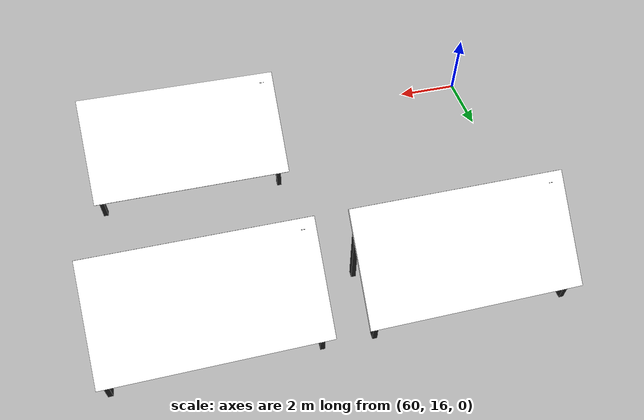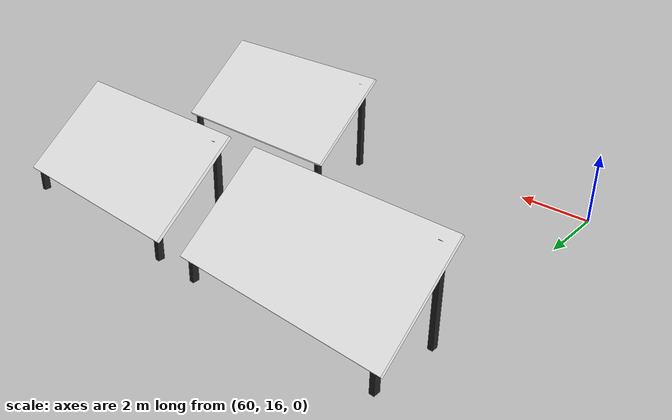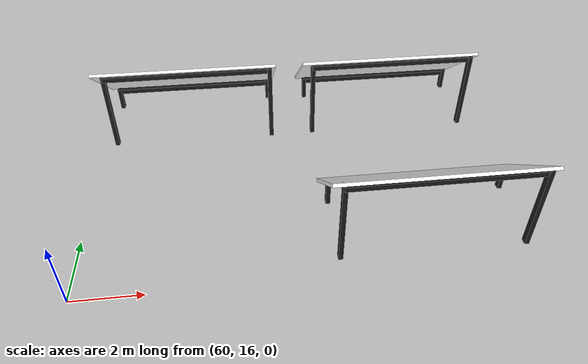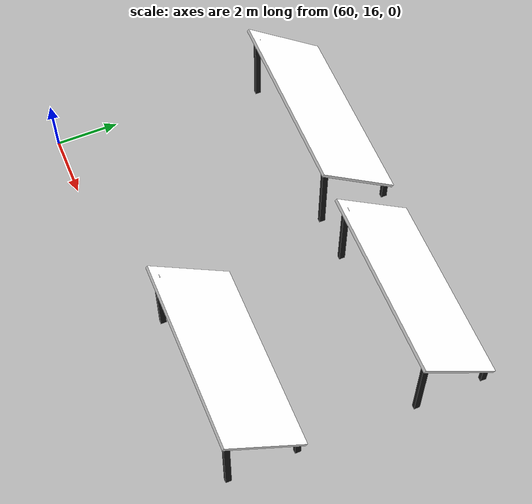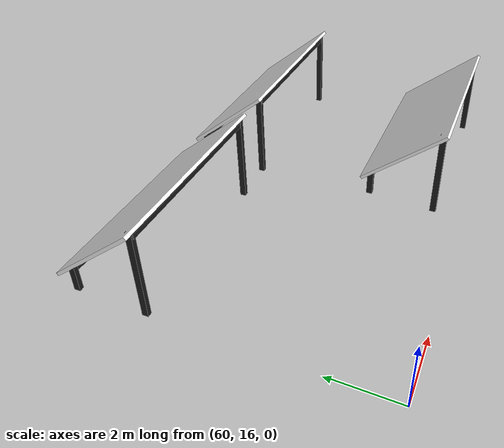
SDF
<sdf version="1.6">
 <world name="default">
  <model name="panel_8_3">
   <static>1</static>
   <link name="link_1">
    <inertial>
     <mass>1.98638</mass>
     <inertia><ixx>1.74251</ixx><ixy>0</ixy><ixz>0</ixz><iyy>6.11467</iyy><iyz>0</iyz><izz>7.85383</izz></inertia>
    </inertial>
    <pose>-0.040001 0.043327 0.560753 -0.688467 0 0</pose>
    <visual name="visual">
     <geometry><box><size>6.07696 3.24293 0.100789</size></box></geometry>
     <material>
      <lighting>1</lighting>
      <script>
       <uri>model://new_solar/materials/scripts</uri>
       <uri>model://new_solar/materials/textures</uri>
       <name>solar</name>
      </script>
      <shader type="pixel"><normal_map>__default__</normal_map></shader>
      <ambient>1 1 1 1</ambient>
      <diffuse>1 1 1 1</diffuse>
      <specular>0 0 0 1</specular>
      <emissive>0 0 0 1</emissive>
     </material>
    </visual>
    <collision name="collision">
     <geometry><box><size>6.07696 3.24293 0.100789</size></box></geometry>
     <surface>
      <friction>
       <ode><mu>1</mu><mu2>1</mu2><fdir1>0 0 0</fdir1><slip1>0</slip1><slip2>0</slip2></ode>
       <torsional>
        <coefficient>1</coefficient>
        <patch_radius>0</patch_radius>
        <surface_radius>0</surface_radius>
        <use_patch_radius>1</use_patch_radius>
        <ode><slip>0</slip></ode>
       </torsional>
      </friction>
      <bounce><restitution_coefficient>0</restitution_coefficient><threshold>1e+06</threshold></bounce>
      <contact>
       <collide_without_contact>0</collide_without_contact>
       <collide_without_contact_bitmask>1</collide_without_contact_bitmask>
       <collide_bitmask>1</collide_bitmask>
       <ode>
        <soft_cfm>0</soft_cfm>
        <soft_erp>0.2</soft_erp>
        <kp>1e+13</kp>
        <kd>1</kd>
        <max_vel>0.01</max_vel>
        <min_depth>0</min_depth>
       </ode>
       <bullet>
        <split_impulse>1</split_impulse>
        <split_impulse_penetration_threshold>-0.01</split_impulse_penetration_threshold>
        <soft_cfm>0</soft_cfm>
        <soft_erp>0.2</soft_erp>
        <kp>1e+13</kp>
        <kd>1</kd>
       </bullet>
      </contact>
     </surface>
    </collision>
   </link>
   <link name="link_2">
    <inertial>
     <mass>0.0207671</mass>
     <inertia>
      <ixx>0.0012143</ixx>
      <ixy>0</ixy>
      <ixz>0</ixz>
      <iyy>0.00118465</iyy>
      <iyz>0</iyz>
      <izz>9.301e-05</izz>
     </inertia>
    </inertial>
    <pose>2.8032 1.09463 -0.744944 0 -0 0</pose>
    <visual name="visual">
     <geometry><box><size>0.135288 0.188253 0.81623</size></box></geometry>
     <material>
      <lighting>1</lighting>
      <script><uri>file://media/materials/scripts/gazebo.material</uri><name>Gazebo/Black</name></script>
      <shader type="pixel"><normal_map>__default__</normal_map></shader>
      <ambient>0 0 0 1</ambient>
      <diffuse>0 0 0 1</diffuse>
      <specular>0.1 0.1 0.1 1</specular>
      <emissive>0 0 0 1</emissive>
     </material>
    </visual>
    <collision name="collision">
     <geometry><box><size>0.135288 0.188253 0.81623</size></box></geometry>
     <surface>
      <friction>
       <ode><mu>1</mu><mu2>1</mu2><fdir1>0 0 0</fdir1><slip1>0</slip1><slip2>0</slip2></ode>
       <torsional>
        <coefficient>1</coefficient>
        <patch_radius>0</patch_radius>
        <surface_radius>0</surface_radius>
        <use_patch_radius>1</use_patch_radius>
        <ode><slip>0</slip></ode>
       </torsional>
      </friction>
      <bounce><restitution_coefficient>0</restitution_coefficient><threshold>1e+06</threshold></bounce>
      <contact>
       <collide_without_contact>0</collide_without_contact>
       <collide_without_contact_bitmask>1</collide_without_contact_bitmask>
       <collide_bitmask>1</collide_bitmask>
       <ode>
        <soft_cfm>0</soft_cfm>
        <soft_erp>0.2</soft_erp>
        <kp>1e+13</kp>
        <kd>1</kd>
        <max_vel>0.01</max_vel>
        <min_depth>0</min_depth>
       </ode>
       <bullet>
        <split_impulse>1</split_impulse>
        <split_impulse_penetration_threshold>-0.01</split_impulse_penetration_threshold>
        <soft_cfm>0</soft_cfm>
        <soft_erp>0.2</soft_erp>
        <kp>1e+13</kp>
        <kd>1</kd>
       </bullet>
      </contact>
     </surface>
    </collision>
   </link>
   <link name="link_2_clone">
    <inertial>
     <mass>0.0207671</mass>
     <inertia>
      <ixx>0.0012143</ixx>
      <ixy>0</ixy>
      <ixz>0</ixz>
      <iyy>0.00118465</iyy>
      <iyz>0</iyz>
      <izz>9.301e-05</izz>
     </inertia>
    </inertial>
    <pose>-2.7581 1.05673 -0.787934 0 -0 0</pose>
    <visual name="visual">
     <geometry><box><size>0.135288 0.188253 0.81623</size></box></geometry>
     <material>
      <lighting>1</lighting>
      <script><uri>file://media/materials/scripts/gazebo.material</uri><name>Gazebo/Black</name></script>
      <shader type="pixel"><normal_map>__default__</normal_map></shader>
      <ambient>0 0 0 1</ambient>
      <diffuse>0 0 0 1</diffuse>
      <specular>0.1 0.1 0.1 1</specular>
      <emissive>0 0 0 1</emissive>
     </material>
    </visual>
    <collision name="collision">
     <geometry><box><size>0.135288 0.188253 0.81623</size></box></geometry>
     <surface>
      <friction>
       <ode><mu>1</mu><mu2>1</mu2><fdir1>0 0 0</fdir1><slip1>0</slip1><slip2>0</slip2></ode>
       <torsional>
        <coefficient>1</coefficient>
        <patch_radius>0</patch_radius>
        <surface_radius>0</surface_radius>
        <use_patch_radius>1</use_patch_radius>
        <ode><slip>0</slip></ode>
       </torsional>
      </friction>
      <bounce><restitution_coefficient>0</restitution_coefficient><threshold>1e+06</threshold></bounce>
      <contact>
       <collide_without_contact>0</collide_without_contact>
       <collide_without_contact_bitmask>1</collide_without_contact_bitmask>
       <collide_bitmask>1</collide_bitmask>
       <ode>
        <soft_cfm>0</soft_cfm>
        <soft_erp>0.2</soft_erp>
        <kp>1e+13</kp>
        <kd>1</kd>
        <max_vel>0.01</max_vel>
        <min_depth>0</min_depth>
       </ode>
       <bullet>
        <split_impulse>1</split_impulse>
        <split_impulse_penetration_threshold>-0.01</split_impulse_penetration_threshold>
        <soft_cfm>0</soft_cfm>
        <soft_erp>0.2</soft_erp>
        <kp>1e+13</kp>
        <kd>1</kd>
       </bullet>
      </contact>
     </surface>
    </collision>
   </link>
   <link name="link_2_clone_clone_clone">
    <inertial>
     <mass>0.0712376</mass>
     <inertia>
      <ixx>0.0467501</ixx>
      <ixy>0</ixy>
      <ixz>0</ixz>
      <iyy>0.0466484</iyy>
      <iyz>0</iyz>
      <izz>0.00031904</izz>
     </inertia>
    </inertial>
    <pose>2.7925 -1.06517 0.041693 0 -0 0</pose>
    <visual name="visual">
     <geometry><box><size>0.135288 0.188253 2.79994</size></box></geometry>
     <material>
      <lighting>1</lighting>
      <script><uri>file://media/materials/scripts/gazebo.material</uri><name>Gazebo/Black</name></script>
      <shader type="pixel"><normal_map>__default__</normal_map></shader>
      <ambient>0 0 0 1</ambient>
      <diffuse>0 0 0 1</diffuse>
      <specular>0.1 0.1 0.1 1</specular>
      <emissive>0 0 0 1</emissive>
     </material>
    </visual>
    <collision name="collision">
     <geometry><box><size>0.135288 0.188253 2.79994</size></box></geometry>
     <surface>
      <friction>
       <ode><mu>1</mu><mu2>1</mu2><fdir1>0 0 0</fdir1><slip1>0</slip1><slip2>0</slip2></ode>
       <torsional>
        <coefficient>1</coefficient>
        <patch_radius>0</patch_radius>
        <surface_radius>0</surface_radius>
        <use_patch_radius>1</use_patch_radius>
        <ode><slip>0</slip></ode>
       </torsional>
      </friction>
      <bounce><restitution_coefficient>0</restitution_coefficient><threshold>1e+06</threshold></bounce>
      <contact>
       <collide_without_contact>0</collide_without_contact>
       <collide_without_contact_bitmask>1</collide_without_contact_bitmask>
       <collide_bitmask>1</collide_bitmask>
       <ode>
        <soft_cfm>0</soft_cfm>
        <soft_erp>0.2</soft_erp>
        <kp>1e+13</kp>
        <kd>1</kd>
        <max_vel>0.01</max_vel>
        <min_depth>0</min_depth>
       </ode>
       <bullet>
        <split_impulse>1</split_impulse>
        <split_impulse_penetration_threshold>-0.01</split_impulse_penetration_threshold>
        <soft_cfm>0</soft_cfm>
        <soft_erp>0.2</soft_erp>
        <kp>1e+13</kp>
        <kd>1</kd>
       </bullet>
      </contact>
     </surface>
    </collision>
   </link>
   <link name="link_2_clone_clone_clone_clone">
    <inertial>
     <mass>0.0712376</mass>
     <inertia>
      <ixx>0.0467501</ixx>
      <ixy>0</ixy>
      <ixz>0</ixz>
      <iyy>0.0466484</iyy>
      <iyz>0</iyz>
      <izz>0.00031904</izz>
     </inertia>
    </inertial>
    <pose>-2.71279 -1.03577 0.041693 0 -0 0</pose>
    <visual name="visual">
     <geometry><box><size>0.135288 0.188253 2.79994</size></box></geometry>
     <material>
      <lighting>1</lighting>
      <script><uri>file://media/materials/scripts/gazebo.material</uri><name>Gazebo/Black</name></script>
      <shader type="pixel"><normal_map>__default__</normal_map></shader>
      <ambient>0 0 0 1</ambient>
      <diffuse>0 0 0 1</diffuse>
      <specular>0.1 0.1 0.1 1</specular>
      <emissive>0 0 0 1</emissive>
     </material>
    </visual>
    <collision name="collision">
     <geometry><box><size>0.135288 0.188253 2.79994</size></box></geometry>
     <surface>
      <friction>
       <ode><mu>1</mu><mu2>1</mu2><fdir1>0 0 0</fdir1><slip1>0</slip1><slip2>0</slip2></ode>
       <torsional>
        <coefficient>1</coefficient>
        <patch_radius>0</patch_radius>
        <surface_radius>0</surface_radius>
        <use_patch_radius>1</use_patch_radius>
        <ode><slip>0</slip></ode>
       </torsional>
      </friction>
      <bounce><restitution_coefficient>0</restitution_coefficient><threshold>1e+06</threshold></bounce>
      <contact>
       <collide_without_contact>0</collide_without_contact>
       <collide_without_contact_bitmask>1</collide_without_contact_bitmask>
       <collide_bitmask>1</collide_bitmask>
       <ode>
        <soft_cfm>0</soft_cfm>
        <soft_erp>0.2</soft_erp>
        <kp>1e+13</kp>
        <kd>1</kd>
        <max_vel>0.01</max_vel>
        <min_depth>0</min_depth>
       </ode>
       <bullet>
        <split_impulse>1</split_impulse>
        <split_impulse_penetration_threshold>-0.01</split_impulse_penetration_threshold>
        <soft_cfm>0</soft_cfm>
        <soft_erp>0.2</soft_erp>
        <kp>1e+13</kp>
        <kd>1</kd>
       </bullet>
      </contact>
     </surface>
    </collision>
   </link>
   <link name="link_3">
    <inertial>
     <mass>0.133626</mass>
     <inertia>
      <ixx>0.00054826</ixx>
      <ixy>0</ixy>
      <ixz>0</ixz>
      <iyy>0.330433</iyy>
      <iyz>0</iyz>
      <izz>0.330457</izz>
     </inertia>
    </inertial>
    <pose>0 1.04453 -0.461177 0 -0 0</pose>
    <visual name="visual">
     <geometry><box><size>5.44521 0.160272 0.153456</size></box></geometry>
     <material>
      <lighting>1</lighting>
      <script><uri>file://media/materials/scripts/gazebo.material</uri><name>Gazebo/Black</name></script>
      <shader type="pixel"><normal_map>__default__</normal_map></shader>
      <ambient>0 0 0 1</ambient>
      <diffuse>0 0 0 1</diffuse>
      <specular>0.1 0.1 0.1 1</specular>
      <emissive>0 0 0 1</emissive>
     </material>
    </visual>
    <collision name="collision">
     <geometry><box><size>5.44521 0.160272 0.153456</size></box></geometry>
     <surface>
      <friction>
       <ode><mu>1</mu><mu2>1</mu2><fdir1>0 0 0</fdir1><slip1>0</slip1><slip2>0</slip2></ode>
       <torsional>
        <coefficient>1</coefficient>
        <patch_radius>0</patch_radius>
        <surface_radius>0</surface_radius>
        <use_patch_radius>1</use_patch_radius>
        <ode><slip>0</slip></ode>
       </torsional>
      </friction>
      <bounce><restitution_coefficient>0</restitution_coefficient><threshold>1e+06</threshold></bounce>
      <contact>
       <collide_without_contact>0</collide_without_contact>
       <collide_without_contact_bitmask>1</collide_without_contact_bitmask>
       <collide_bitmask>1</collide_bitmask>
       <ode>
        <soft_cfm>0</soft_cfm>
        <soft_erp>0.2</soft_erp>
        <kp>1e+13</kp>
        <kd>1</kd>
        <max_vel>0.01</max_vel>
        <min_depth>0</min_depth>
       </ode>
       <bullet>
        <split_impulse>1</split_impulse>
        <split_impulse_penetration_threshold>-0.01</split_impulse_penetration_threshold>
        <soft_cfm>0</soft_cfm>
        <soft_erp>0.2</soft_erp>
        <kp>1e+13</kp>
        <kd>1</kd>
       </bullet>
      </contact>
     </surface>
    </collision>
   </link>
   <link name="link_3_clone">
    <inertial>
     <mass>0.133626</mass>
     <inertia>
      <ixx>0.00054826</ixx>
      <ixy>0</ixy>
      <ixz>0</ixz>
      <iyy>0.330433</iyy>
      <iyz>0</iyz>
      <izz>0.330457</izz>
     </inertia>
    </inertial>
    <pose>-0.0149 -1.07367 1.34991 0 -0 0</pose>
    <visual name="visual">
     <geometry><box><size>5.44521 0.160272 0.153456</size></box></geometry>
     <material>
      <lighting>1</lighting>
      <script><uri>file://media/materials/scripts/gazebo.material</uri><name>Gazebo/Black</name></script>
      <shader type="pixel"><normal_map>__default__</normal_map></shader>
      <ambient>0 0 0 1</ambient>
      <diffuse>0 0 0 1</diffuse>
      <specular>0.1 0.1 0.1 1</specular>
      <emissive>0 0 0 1</emissive>
     </material>
    </visual>
    <collision name="collision">
     <geometry><box><size>5.44521 0.160272 0.153456</size></box></geometry>
     <surface>
      <friction>
       <ode><mu>1</mu><mu2>1</mu2><fdir1>0 0 0</fdir1><slip1>0</slip1><slip2>0</slip2></ode>
       <torsional>
        <coefficient>1</coefficient>
        <patch_radius>0</patch_radius>
        <surface_radius>0</surface_radius>
        <use_patch_radius>1</use_patch_radius>
        <ode><slip>0</slip></ode>
       </torsional>
      </friction>
      <bounce><restitution_coefficient>0</restitution_coefficient><threshold>1e+06</threshold></bounce>
      <contact>
       <collide_without_contact>0</collide_without_contact>
       <collide_without_contact_bitmask>1</collide_without_contact_bitmask>
       <collide_bitmask>1</collide_bitmask>
       <ode>
        <soft_cfm>0</soft_cfm>
        <soft_erp>0.2</soft_erp>
        <kp>1e+13</kp>
        <kd>1</kd>
        <max_vel>0.01</max_vel>
        <min_depth>0</min_depth>
       </ode>
       <bullet>
        <split_impulse>1</split_impulse>
        <split_impulse_penetration_threshold>-0.01</split_impulse_penetration_threshold>
        <soft_cfm>0</soft_cfm>
        <soft_erp>0.2</soft_erp>
        <kp>1e+13</kp>
        <kd>1</kd>
       </bullet>
      </contact>
     </surface>
    </collision>
   </link>
   <pose>63 24 1 0 -0 0</pose>
  </model>
  <model name="panel_9_2">
   <static>1</static>
   <link name="link_1">
    <inertial>
     <mass>1.98638</mass>
     <inertia><ixx>1.74251</ixx><ixy>0</ixy><ixz>0</ixz><iyy>6.11467</iyy><iyz>0</iyz><izz>7.85383</izz></inertia>
    </inertial>
    <pose>-0.040001 0.043327 0.560753 -0.688467 0 0</pose>
    <visual name="visual">
     <geometry><box><size>6.07696 3.24293 0.100789</size></box></geometry>
     <material>
      <lighting>1</lighting>
      <script>
       <uri>model://new_solar/materials/scripts</uri>
       <uri>model://new_solar/materials/textures</uri>
       <name>solar</name>
      </script>
      <shader type="pixel"><normal_map>__default__</normal_map></shader>
      <ambient>1 1 1 1</ambient>
      <diffuse>1 1 1 1</diffuse>
      <specular>0 0 0 1</specular>
      <emissive>0 0 0 1</emissive>
     </material>
    </visual>
    <collision name="collision">
     <geometry><box><size>6.07696 3.24293 0.100789</size></box></geometry>
     <surface>
      <friction>
       <ode><mu>1</mu><mu2>1</mu2><fdir1>0 0 0</fdir1><slip1>0</slip1><slip2>0</slip2></ode>
       <torsional>
        <coefficient>1</coefficient>
        <patch_radius>0</patch_radius>
        <surface_radius>0</surface_radius>
        <use_patch_radius>1</use_patch_radius>
        <ode><slip>0</slip></ode>
       </torsional>
      </friction>
      <bounce><restitution_coefficient>0</restitution_coefficient><threshold>1e+06</threshold></bounce>
      <contact>
       <collide_without_contact>0</collide_without_contact>
       <collide_without_contact_bitmask>1</collide_without_contact_bitmask>
       <collide_bitmask>1</collide_bitmask>
       <ode>
        <soft_cfm>0</soft_cfm>
        <soft_erp>0.2</soft_erp>
        <kp>1e+13</kp>
        <kd>1</kd>
        <max_vel>0.01</max_vel>
        <min_depth>0</min_depth>
       </ode>
       <bullet>
        <split_impulse>1</split_impulse>
        <split_impulse_penetration_threshold>-0.01</split_impulse_penetration_threshold>
        <soft_cfm>0</soft_cfm>
        <soft_erp>0.2</soft_erp>
        <kp>1e+13</kp>
        <kd>1</kd>
       </bullet>
      </contact>
     </surface>
    </collision>
   </link>
   <link name="link_2">
    <inertial>
     <mass>0.0207671</mass>
     <inertia>
      <ixx>0.0012143</ixx>
      <ixy>0</ixy>
      <ixz>0</ixz>
      <iyy>0.00118465</iyy>
      <iyz>0</iyz>
      <izz>9.301e-05</izz>
     </inertia>
    </inertial>
    <pose>2.8032 1.09463 -0.744944 0 -0 0</pose>
    <visual name="visual">
     <geometry><box><size>0.135288 0.188253 0.81623</size></box></geometry>
     <material>
      <lighting>1</lighting>
      <script><uri>file://media/materials/scripts/gazebo.material</uri><name>Gazebo/Black</name></script>
      <shader type="pixel"><normal_map>__default__</normal_map></shader>
      <ambient>0 0 0 1</ambient>
      <diffuse>0 0 0 1</diffuse>
      <specular>0.1 0.1 0.1 1</specular>
      <emissive>0 0 0 1</emissive>
     </material>
    </visual>
    <collision name="collision">
     <geometry><box><size>0.135288 0.188253 0.81623</size></box></geometry>
     <surface>
      <friction>
       <ode><mu>1</mu><mu2>1</mu2><fdir1>0 0 0</fdir1><slip1>0</slip1><slip2>0</slip2></ode>
       <torsional>
        <coefficient>1</coefficient>
        <patch_radius>0</patch_radius>
        <surface_radius>0</surface_radius>
        <use_patch_radius>1</use_patch_radius>
        <ode><slip>0</slip></ode>
       </torsional>
      </friction>
      <bounce><restitution_coefficient>0</restitution_coefficient><threshold>1e+06</threshold></bounce>
      <contact>
       <collide_without_contact>0</collide_without_contact>
       <collide_without_contact_bitmask>1</collide_without_contact_bitmask>
       <collide_bitmask>1</collide_bitmask>
       <ode>
        <soft_cfm>0</soft_cfm>
        <soft_erp>0.2</soft_erp>
        <kp>1e+13</kp>
        <kd>1</kd>
        <max_vel>0.01</max_vel>
        <min_depth>0</min_depth>
       </ode>
       <bullet>
        <split_impulse>1</split_impulse>
        <split_impulse_penetration_threshold>-0.01</split_impulse_penetration_threshold>
        <soft_cfm>0</soft_cfm>
        <soft_erp>0.2</soft_erp>
        <kp>1e+13</kp>
        <kd>1</kd>
       </bullet>
      </contact>
     </surface>
    </collision>
   </link>
   <link name="link_2_clone">
    <inertial>
     <mass>0.0207671</mass>
     <inertia>
      <ixx>0.0012143</ixx>
      <ixy>0</ixy>
      <ixz>0</ixz>
      <iyy>0.00118465</iyy>
      <iyz>0</iyz>
      <izz>9.301e-05</izz>
     </inertia>
    </inertial>
    <pose>-2.7581 1.05673 -0.787934 0 -0 0</pose>
    <visual name="visual">
     <geometry><box><size>0.135288 0.188253 0.81623</size></box></geometry>
     <material>
      <lighting>1</lighting>
      <script><uri>file://media/materials/scripts/gazebo.material</uri><name>Gazebo/Black</name></script>
      <shader type="pixel"><normal_map>__default__</normal_map></shader>
      <ambient>0 0 0 1</ambient>
      <diffuse>0 0 0 1</diffuse>
      <specular>0.1 0.1 0.1 1</specular>
      <emissive>0 0 0 1</emissive>
     </material>
    </visual>
    <collision name="collision">
     <geometry><box><size>0.135288 0.188253 0.81623</size></box></geometry>
     <surface>
      <friction>
       <ode><mu>1</mu><mu2>1</mu2><fdir1>0 0 0</fdir1><slip1>0</slip1><slip2>0</slip2></ode>
       <torsional>
        <coefficient>1</coefficient>
        <patch_radius>0</patch_radius>
        <surface_radius>0</surface_radius>
        <use_patch_radius>1</use_patch_radius>
        <ode><slip>0</slip></ode>
       </torsional>
      </friction>
      <bounce><restitution_coefficient>0</restitution_coefficient><threshold>1e+06</threshold></bounce>
      <contact>
       <collide_without_contact>0</collide_without_contact>
       <collide_without_contact_bitmask>1</collide_without_contact_bitmask>
       <collide_bitmask>1</collide_bitmask>
       <ode>
        <soft_cfm>0</soft_cfm>
        <soft_erp>0.2</soft_erp>
        <kp>1e+13</kp>
        <kd>1</kd>
        <max_vel>0.01</max_vel>
        <min_depth>0</min_depth>
       </ode>
       <bullet>
        <split_impulse>1</split_impulse>
        <split_impulse_penetration_threshold>-0.01</split_impulse_penetration_threshold>
        <soft_cfm>0</soft_cfm>
        <soft_erp>0.2</soft_erp>
        <kp>1e+13</kp>
        <kd>1</kd>
       </bullet>
      </contact>
     </surface>
    </collision>
   </link>
   <link name="link_2_clone_clone_clone">
    <inertial>
     <mass>0.0712376</mass>
     <inertia>
      <ixx>0.0467501</ixx>
      <ixy>0</ixy>
      <ixz>0</ixz>
      <iyy>0.0466484</iyy>
      <iyz>0</iyz>
      <izz>0.00031904</izz>
     </inertia>
    </inertial>
    <pose>2.7925 -1.06517 0.041693 0 -0 0</pose>
    <visual name="visual">
     <geometry><box><size>0.135288 0.188253 2.79994</size></box></geometry>
     <material>
      <lighting>1</lighting>
      <script><uri>file://media/materials/scripts/gazebo.material</uri><name>Gazebo/Black</name></script>
      <shader type="pixel"><normal_map>__default__</normal_map></shader>
      <ambient>0 0 0 1</ambient>
      <diffuse>0 0 0 1</diffuse>
      <specular>0.1 0.1 0.1 1</specular>
      <emissive>0 0 0 1</emissive>
     </material>
    </visual>
    <collision name="collision">
     <geometry><box><size>0.135288 0.188253 2.79994</size></box></geometry>
     <surface>
      <friction>
       <ode><mu>1</mu><mu2>1</mu2><fdir1>0 0 0</fdir1><slip1>0</slip1><slip2>0</slip2></ode>
       <torsional>
        <coefficient>1</coefficient>
        <patch_radius>0</patch_radius>
        <surface_radius>0</surface_radius>
        <use_patch_radius>1</use_patch_radius>
        <ode><slip>0</slip></ode>
       </torsional>
      </friction>
      <bounce><restitution_coefficient>0</restitution_coefficient><threshold>1e+06</threshold></bounce>
      <contact>
       <collide_without_contact>0</collide_without_contact>
       <collide_without_contact_bitmask>1</collide_without_contact_bitmask>
       <collide_bitmask>1</collide_bitmask>
       <ode>
        <soft_cfm>0</soft_cfm>
        <soft_erp>0.2</soft_erp>
        <kp>1e+13</kp>
        <kd>1</kd>
        <max_vel>0.01</max_vel>
        <min_depth>0</min_depth>
       </ode>
       <bullet>
        <split_impulse>1</split_impulse>
        <split_impulse_penetration_threshold>-0.01</split_impulse_penetration_threshold>
        <soft_cfm>0</soft_cfm>
        <soft_erp>0.2</soft_erp>
        <kp>1e+13</kp>
        <kd>1</kd>
       </bullet>
      </contact>
     </surface>
    </collision>
   </link>
   <link name="link_2_clone_clone_clone_clone">
    <inertial>
     <mass>0.0712376</mass>
     <inertia>
      <ixx>0.0467501</ixx>
      <ixy>0</ixy>
      <ixz>0</ixz>
      <iyy>0.0466484</iyy>
      <iyz>0</iyz>
      <izz>0.00031904</izz>
     </inertia>
    </inertial>
    <pose>-2.71279 -1.03577 0.041693 0 -0 0</pose>
    <visual name="visual">
     <geometry><box><size>0.135288 0.188253 2.79994</size></box></geometry>
     <material>
      <lighting>1</lighting>
      <script><uri>file://media/materials/scripts/gazebo.material</uri><name>Gazebo/Black</name></script>
      <shader type="pixel"><normal_map>__default__</normal_map></shader>
      <ambient>0 0 0 1</ambient>
      <diffuse>0 0 0 1</diffuse>
      <specular>0.1 0.1 0.1 1</specular>
      <emissive>0 0 0 1</emissive>
     </material>
    </visual>
    <collision name="collision">
     <geometry><box><size>0.135288 0.188253 2.79994</size></box></geometry>
     <surface>
      <friction>
       <ode><mu>1</mu><mu2>1</mu2><fdir1>0 0 0</fdir1><slip1>0</slip1><slip2>0</slip2></ode>
       <torsional>
        <coefficient>1</coefficient>
        <patch_radius>0</patch_radius>
        <surface_radius>0</surface_radius>
        <use_patch_radius>1</use_patch_radius>
        <ode><slip>0</slip></ode>
       </torsional>
      </friction>
      <bounce><restitution_coefficient>0</restitution_coefficient><threshold>1e+06</threshold></bounce>
      <contact>
       <collide_without_contact>0</collide_without_contact>
       <collide_without_contact_bitmask>1</collide_without_contact_bitmask>
       <collide_bitmask>1</collide_bitmask>
       <ode>
        <soft_cfm>0</soft_cfm>
        <soft_erp>0.2</soft_erp>
        <kp>1e+13</kp>
        <kd>1</kd>
        <max_vel>0.01</max_vel>
        <min_depth>0</min_depth>
       </ode>
       <bullet>
        <split_impulse>1</split_impulse>
        <split_impulse_penetration_threshold>-0.01</split_impulse_penetration_threshold>
        <soft_cfm>0</soft_cfm>
        <soft_erp>0.2</soft_erp>
        <kp>1e+13</kp>
        <kd>1</kd>
       </bullet>
      </contact>
     </surface>
    </collision>
   </link>
   <link name="link_3">
    <inertial>
     <mass>0.133626</mass>
     <inertia>
      <ixx>0.00054826</ixx>
      <ixy>0</ixy>
      <ixz>0</ixz>
      <iyy>0.330433</iyy>
      <iyz>0</iyz>
      <izz>0.330457</izz>
     </inertia>
    </inertial>
    <pose>0 1.04453 -0.461177 0 -0 0</pose>
    <visual name="visual">
     <geometry><box><size>5.44521 0.160272 0.153456</size></box></geometry>
     <material>
      <lighting>1</lighting>
      <script><uri>file://media/materials/scripts/gazebo.material</uri><name>Gazebo/Black</name></script>
      <shader type="pixel"><normal_map>__default__</normal_map></shader>
      <ambient>0 0 0 1</ambient>
      <diffuse>0 0 0 1</diffuse>
      <specular>0.1 0.1 0.1 1</specular>
      <emissive>0 0 0 1</emissive>
     </material>
    </visual>
    <collision name="collision">
     <geometry><box><size>5.44521 0.160272 0.153456</size></box></geometry>
     <surface>
      <friction>
       <ode><mu>1</mu><mu2>1</mu2><fdir1>0 0 0</fdir1><slip1>0</slip1><slip2>0</slip2></ode>
       <torsional>
        <coefficient>1</coefficient>
        <patch_radius>0</patch_radius>
        <surface_radius>0</surface_radius>
        <use_patch_radius>1</use_patch_radius>
        <ode><slip>0</slip></ode>
       </torsional>
      </friction>
      <bounce><restitution_coefficient>0</restitution_coefficient><threshold>1e+06</threshold></bounce>
      <contact>
       <collide_without_contact>0</collide_without_contact>
       <collide_without_contact_bitmask>1</collide_without_contact_bitmask>
       <collide_bitmask>1</collide_bitmask>
       <ode>
        <soft_cfm>0</soft_cfm>
        <soft_erp>0.2</soft_erp>
        <kp>1e+13</kp>
        <kd>1</kd>
        <max_vel>0.01</max_vel>
        <min_depth>0</min_depth>
       </ode>
       <bullet>
        <split_impulse>1</split_impulse>
        <split_impulse_penetration_threshold>-0.01</split_impulse_penetration_threshold>
        <soft_cfm>0</soft_cfm>
        <soft_erp>0.2</soft_erp>
        <kp>1e+13</kp>
        <kd>1</kd>
       </bullet>
      </contact>
     </surface>
    </collision>
   </link>
   <link name="link_3_clone">
    <inertial>
     <mass>0.133626</mass>
     <inertia>
      <ixx>0.00054826</ixx>
      <ixy>0</ixy>
      <ixz>0</ixz>
      <iyy>0.330433</iyy>
      <iyz>0</iyz>
      <izz>0.330457</izz>
     </inertia>
    </inertial>
    <pose>-0.0149 -1.07367 1.34991 0 -0 0</pose>
    <visual name="visual">
     <geometry><box><size>5.44521 0.160272 0.153456</size></box></geometry>
     <material>
      <lighting>1</lighting>
      <script><uri>file://media/materials/scripts/gazebo.material</uri><name>Gazebo/Black</name></script>
      <shader type="pixel"><normal_map>__default__</normal_map></shader>
      <ambient>0 0 0 1</ambient>
      <diffuse>0 0 0 1</diffuse>
      <specular>0.1 0.1 0.1 1</specular>
      <emissive>0 0 0 1</emissive>
     </material>
    </visual>
    <collision name="collision">
     <geometry><box><size>5.44521 0.160272 0.153456</size></box></geometry>
     <surface>
      <friction>
       <ode><mu>1</mu><mu2>1</mu2><fdir1>0 0 0</fdir1><slip1>0</slip1><slip2>0</slip2></ode>
       <torsional>
        <coefficient>1</coefficient>
        <patch_radius>0</patch_radius>
        <surface_radius>0</surface_radius>
        <use_patch_radius>1</use_patch_radius>
        <ode><slip>0</slip></ode>
       </torsional>
      </friction>
      <bounce><restitution_coefficient>0</restitution_coefficient><threshold>1e+06</threshold></bounce>
      <contact>
       <collide_without_contact>0</collide_without_contact>
       <collide_without_contact_bitmask>1</collide_without_contact_bitmask>
       <collide_bitmask>1</collide_bitmask>
       <ode>
        <soft_cfm>0</soft_cfm>
        <soft_erp>0.2</soft_erp>
        <kp>1e+13</kp>
        <kd>1</kd>
        <max_vel>0.01</max_vel>
        <min_depth>0</min_depth>
       </ode>
       <bullet>
        <split_impulse>1</split_impulse>
        <split_impulse_penetration_threshold>-0.01</split_impulse_penetration_threshold>
        <soft_cfm>0</soft_cfm>
        <soft_erp>0.2</soft_erp>
        <kp>1e+13</kp>
        <kd>1</kd>
       </bullet>
      </contact>
     </surface>
    </collision>
   </link>
   <pose>70 18 1 0 -0 0</pose>
  </model>
  <model name="panel_9_3">
   <static>1</static>
   <link name="link_1">
    <inertial>
     <mass>1.98638</mass>
     <inertia><ixx>1.74251</ixx><ixy>0</ixy><ixz>0</ixz><iyy>6.11467</iyy><iyz>0</iyz><izz>7.85383</izz></inertia>
    </inertial>
    <pose>-0.040001 0.043327 0.560753 -0.688467 0 0</pose>
    <visual name="visual">
     <geometry><box><size>6.07696 3.24293 0.100789</size></box></geometry>
     <material>
      <lighting>1</lighting>
      <script>
       <uri>model://new_solar/materials/scripts</uri>
       <uri>model://new_solar/materials/textures</uri>
       <name>solar</name>
      </script>
      <shader type="pixel"><normal_map>__default__</normal_map></shader>
      <ambient>1 1 1 1</ambient>
      <diffuse>1 1 1 1</diffuse>
      <specular>0 0 0 1</specular>
      <emissive>0 0 0 1</emissive>
     </material>
    </visual>
    <collision name="collision">
     <geometry><box><size>6.07696 3.24293 0.100789</size></box></geometry>
     <surface>
      <friction>
       <ode><mu>1</mu><mu2>1</mu2><fdir1>0 0 0</fdir1><slip1>0</slip1><slip2>0</slip2></ode>
       <torsional>
        <coefficient>1</coefficient>
        <patch_radius>0</patch_radius>
        <surface_radius>0</surface_radius>
        <use_patch_radius>1</use_patch_radius>
        <ode><slip>0</slip></ode>
       </torsional>
      </friction>
      <bounce><restitution_coefficient>0</restitution_coefficient><threshold>1e+06</threshold></bounce>
      <contact>
       <collide_without_contact>0</collide_without_contact>
       <collide_without_contact_bitmask>1</collide_without_contact_bitmask>
       <collide_bitmask>1</collide_bitmask>
       <ode>
        <soft_cfm>0</soft_cfm>
        <soft_erp>0.2</soft_erp>
        <kp>1e+13</kp>
        <kd>1</kd>
        <max_vel>0.01</max_vel>
        <min_depth>0</min_depth>
       </ode>
       <bullet>
        <split_impulse>1</split_impulse>
        <split_impulse_penetration_threshold>-0.01</split_impulse_penetration_threshold>
        <soft_cfm>0</soft_cfm>
        <soft_erp>0.2</soft_erp>
        <kp>1e+13</kp>
        <kd>1</kd>
       </bullet>
      </contact>
     </surface>
    </collision>
   </link>
   <link name="link_2">
    <inertial>
     <mass>0.0207671</mass>
     <inertia>
      <ixx>0.0012143</ixx>
      <ixy>0</ixy>
      <ixz>0</ixz>
      <iyy>0.00118465</iyy>
      <iyz>0</iyz>
      <izz>9.301e-05</izz>
     </inertia>
    </inertial>
    <pose>2.8032 1.09463 -0.744944 0 -0 0</pose>
    <visual name="visual">
     <geometry><box><size>0.135288 0.188253 0.81623</size></box></geometry>
     <material>
      <lighting>1</lighting>
      <script><uri>file://media/materials/scripts/gazebo.material</uri><name>Gazebo/Black</name></script>
      <shader type="pixel"><normal_map>__default__</normal_map></shader>
      <ambient>0 0 0 1</ambient>
      <diffuse>0 0 0 1</diffuse>
      <specular>0.1 0.1 0.1 1</specular>
      <emissive>0 0 0 1</emissive>
     </material>
    </visual>
    <collision name="collision">
     <geometry><box><size>0.135288 0.188253 0.81623</size></box></geometry>
     <surface>
      <friction>
       <ode><mu>1</mu><mu2>1</mu2><fdir1>0 0 0</fdir1><slip1>0</slip1><slip2>0</slip2></ode>
       <torsional>
        <coefficient>1</coefficient>
        <patch_radius>0</patch_radius>
        <surface_radius>0</surface_radius>
        <use_patch_radius>1</use_patch_radius>
        <ode><slip>0</slip></ode>
       </torsional>
      </friction>
      <bounce><restitution_coefficient>0</restitution_coefficient><threshold>1e+06</threshold></bounce>
      <contact>
       <collide_without_contact>0</collide_without_contact>
       <collide_without_contact_bitmask>1</collide_without_contact_bitmask>
       <collide_bitmask>1</collide_bitmask>
       <ode>
        <soft_cfm>0</soft_cfm>
        <soft_erp>0.2</soft_erp>
        <kp>1e+13</kp>
        <kd>1</kd>
        <max_vel>0.01</max_vel>
        <min_depth>0</min_depth>
       </ode>
       <bullet>
        <split_impulse>1</split_impulse>
        <split_impulse_penetration_threshold>-0.01</split_impulse_penetration_threshold>
        <soft_cfm>0</soft_cfm>
        <soft_erp>0.2</soft_erp>
        <kp>1e+13</kp>
        <kd>1</kd>
       </bullet>
      </contact>
     </surface>
    </collision>
   </link>
   <link name="link_2_clone">
    <inertial>
     <mass>0.0207671</mass>
     <inertia>
      <ixx>0.0012143</ixx>
      <ixy>0</ixy>
      <ixz>0</ixz>
      <iyy>0.00118465</iyy>
      <iyz>0</iyz>
      <izz>9.301e-05</izz>
     </inertia>
    </inertial>
    <pose>-2.7581 1.05673 -0.787934 0 -0 0</pose>
    <visual name="visual">
     <geometry><box><size>0.135288 0.188253 0.81623</size></box></geometry>
     <material>
      <lighting>1</lighting>
      <script><uri>file://media/materials/scripts/gazebo.material</uri><name>Gazebo/Black</name></script>
      <shader type="pixel"><normal_map>__default__</normal_map></shader>
      <ambient>0 0 0 1</ambient>
      <diffuse>0 0 0 1</diffuse>
      <specular>0.1 0.1 0.1 1</specular>
      <emissive>0 0 0 1</emissive>
     </material>
    </visual>
    <collision name="collision">
     <geometry><box><size>0.135288 0.188253 0.81623</size></box></geometry>
     <surface>
      <friction>
       <ode><mu>1</mu><mu2>1</mu2><fdir1>0 0 0</fdir1><slip1>0</slip1><slip2>0</slip2></ode>
       <torsional>
        <coefficient>1</coefficient>
        <patch_radius>0</patch_radius>
        <surface_radius>0</surface_radius>
        <use_patch_radius>1</use_patch_radius>
        <ode><slip>0</slip></ode>
       </torsional>
      </friction>
      <bounce><restitution_coefficient>0</restitution_coefficient><threshold>1e+06</threshold></bounce>
      <contact>
       <collide_without_contact>0</collide_without_contact>
       <collide_without_contact_bitmask>1</collide_without_contact_bitmask>
       <collide_bitmask>1</collide_bitmask>
       <ode>
        <soft_cfm>0</soft_cfm>
        <soft_erp>0.2</soft_erp>
        <kp>1e+13</kp>
        <kd>1</kd>
        <max_vel>0.01</max_vel>
        <min_depth>0</min_depth>
       </ode>
       <bullet>
        <split_impulse>1</split_impulse>
        <split_impulse_penetration_threshold>-0.01</split_impulse_penetration_threshold>
        <soft_cfm>0</soft_cfm>
        <soft_erp>0.2</soft_erp>
        <kp>1e+13</kp>
        <kd>1</kd>
       </bullet>
      </contact>
     </surface>
    </collision>
   </link>
   <link name="link_2_clone_clone_clone">
    <inertial>
     <mass>0.0712376</mass>
     <inertia>
      <ixx>0.0467501</ixx>
      <ixy>0</ixy>
      <ixz>0</ixz>
      <iyy>0.0466484</iyy>
      <iyz>0</iyz>
      <izz>0.00031904</izz>
     </inertia>
    </inertial>
    <pose>2.7925 -1.06517 0.041693 0 -0 0</pose>
    <visual name="visual">
     <geometry><box><size>0.135288 0.188253 2.79994</size></box></geometry>
     <material>
      <lighting>1</lighting>
      <script><uri>file://media/materials/scripts/gazebo.material</uri><name>Gazebo/Black</name></script>
      <shader type="pixel"><normal_map>__default__</normal_map></shader>
      <ambient>0 0 0 1</ambient>
      <diffuse>0 0 0 1</diffuse>
      <specular>0.1 0.1 0.1 1</specular>
      <emissive>0 0 0 1</emissive>
     </material>
    </visual>
    <collision name="collision">
     <geometry><box><size>0.135288 0.188253 2.79994</size></box></geometry>
     <surface>
      <friction>
       <ode><mu>1</mu><mu2>1</mu2><fdir1>0 0 0</fdir1><slip1>0</slip1><slip2>0</slip2></ode>
       <torsional>
        <coefficient>1</coefficient>
        <patch_radius>0</patch_radius>
        <surface_radius>0</surface_radius>
        <use_patch_radius>1</use_patch_radius>
        <ode><slip>0</slip></ode>
       </torsional>
      </friction>
      <bounce><restitution_coefficient>0</restitution_coefficient><threshold>1e+06</threshold></bounce>
      <contact>
       <collide_without_contact>0</collide_without_contact>
       <collide_without_contact_bitmask>1</collide_without_contact_bitmask>
       <collide_bitmask>1</collide_bitmask>
       <ode>
        <soft_cfm>0</soft_cfm>
        <soft_erp>0.2</soft_erp>
        <kp>1e+13</kp>
        <kd>1</kd>
        <max_vel>0.01</max_vel>
        <min_depth>0</min_depth>
       </ode>
       <bullet>
        <split_impulse>1</split_impulse>
        <split_impulse_penetration_threshold>-0.01</split_impulse_penetration_threshold>
        <soft_cfm>0</soft_cfm>
        <soft_erp>0.2</soft_erp>
        <kp>1e+13</kp>
        <kd>1</kd>
       </bullet>
      </contact>
     </surface>
    </collision>
   </link>
   <link name="link_2_clone_clone_clone_clone">
    <inertial>
     <mass>0.0712376</mass>
     <inertia>
      <ixx>0.0467501</ixx>
      <ixy>0</ixy>
      <ixz>0</ixz>
      <iyy>0.0466484</iyy>
      <iyz>0</iyz>
      <izz>0.00031904</izz>
     </inertia>
    </inertial>
    <pose>-2.71279 -1.03577 0.041693 0 -0 0</pose>
    <visual name="visual">
     <geometry><box><size>0.135288 0.188253 2.79994</size></box></geometry>
     <material>
      <lighting>1</lighting>
      <script><uri>file://media/materials/scripts/gazebo.material</uri><name>Gazebo/Black</name></script>
      <shader type="pixel"><normal_map>__default__</normal_map></shader>
      <ambient>0 0 0 1</ambient>
      <diffuse>0 0 0 1</diffuse>
      <specular>0.1 0.1 0.1 1</specular>
      <emissive>0 0 0 1</emissive>
     </material>
    </visual>
    <collision name="collision">
     <geometry><box><size>0.135288 0.188253 2.79994</size></box></geometry>
     <surface>
      <friction>
       <ode><mu>1</mu><mu2>1</mu2><fdir1>0 0 0</fdir1><slip1>0</slip1><slip2>0</slip2></ode>
       <torsional>
        <coefficient>1</coefficient>
        <patch_radius>0</patch_radius>
        <surface_radius>0</surface_radius>
        <use_patch_radius>1</use_patch_radius>
        <ode><slip>0</slip></ode>
       </torsional>
      </friction>
      <bounce><restitution_coefficient>0</restitution_coefficient><threshold>1e+06</threshold></bounce>
      <contact>
       <collide_without_contact>0</collide_without_contact>
       <collide_without_contact_bitmask>1</collide_without_contact_bitmask>
       <collide_bitmask>1</collide_bitmask>
       <ode>
        <soft_cfm>0</soft_cfm>
        <soft_erp>0.2</soft_erp>
        <kp>1e+13</kp>
        <kd>1</kd>
        <max_vel>0.01</max_vel>
        <min_depth>0</min_depth>
       </ode>
       <bullet>
        <split_impulse>1</split_impulse>
        <split_impulse_penetration_threshold>-0.01</split_impulse_penetration_threshold>
        <soft_cfm>0</soft_cfm>
        <soft_erp>0.2</soft_erp>
        <kp>1e+13</kp>
        <kd>1</kd>
       </bullet>
      </contact>
     </surface>
    </collision>
   </link>
   <link name="link_3">
    <inertial>
     <mass>0.133626</mass>
     <inertia>
      <ixx>0.00054826</ixx>
      <ixy>0</ixy>
      <ixz>0</ixz>
      <iyy>0.330433</iyy>
      <iyz>0</iyz>
      <izz>0.330457</izz>
     </inertia>
    </inertial>
    <pose>0 1.04453 -0.461177 0 -0 0</pose>
    <visual name="visual">
     <geometry><box><size>5.44521 0.160272 0.153456</size></box></geometry>
     <material>
      <lighting>1</lighting>
      <script><uri>file://media/materials/scripts/gazebo.material</uri><name>Gazebo/Black</name></script>
      <shader type="pixel"><normal_map>__default__</normal_map></shader>
      <ambient>0 0 0 1</ambient>
      <diffuse>0 0 0 1</diffuse>
      <specular>0.1 0.1 0.1 1</specular>
      <emissive>0 0 0 1</emissive>
     </material>
    </visual>
    <collision name="collision">
     <geometry><box><size>5.44521 0.160272 0.153456</size></box></geometry>
     <surface>
      <friction>
       <ode><mu>1</mu><mu2>1</mu2><fdir1>0 0 0</fdir1><slip1>0</slip1><slip2>0</slip2></ode>
       <torsional>
        <coefficient>1</coefficient>
        <patch_radius>0</patch_radius>
        <surface_radius>0</surface_radius>
        <use_patch_radius>1</use_patch_radius>
        <ode><slip>0</slip></ode>
       </torsional>
      </friction>
      <bounce><restitution_coefficient>0</restitution_coefficient><threshold>1e+06</threshold></bounce>
      <contact>
       <collide_without_contact>0</collide_without_contact>
       <collide_without_contact_bitmask>1</collide_without_contact_bitmask>
       <collide_bitmask>1</collide_bitmask>
       <ode>
        <soft_cfm>0</soft_cfm>
        <soft_erp>0.2</soft_erp>
        <kp>1e+13</kp>
        <kd>1</kd>
        <max_vel>0.01</max_vel>
        <min_depth>0</min_depth>
       </ode>
       <bullet>
        <split_impulse>1</split_impulse>
        <split_impulse_penetration_threshold>-0.01</split_impulse_penetration_threshold>
        <soft_cfm>0</soft_cfm>
        <soft_erp>0.2</soft_erp>
        <kp>1e+13</kp>
        <kd>1</kd>
       </bullet>
      </contact>
     </surface>
    </collision>
   </link>
   <link name="link_3_clone">
    <inertial>
     <mass>0.133626</mass>
     <inertia>
      <ixx>0.00054826</ixx>
      <ixy>0</ixy>
      <ixz>0</ixz>
      <iyy>0.330433</iyy>
      <iyz>0</iyz>
      <izz>0.330457</izz>
     </inertia>
    </inertial>
    <pose>-0.0149 -1.07367 1.34991 0 -0 0</pose>
    <visual name="visual">
     <geometry><box><size>5.44521 0.160272 0.153456</size></box></geometry>
     <material>
      <lighting>1</lighting>
      <script><uri>file://media/materials/scripts/gazebo.material</uri><name>Gazebo/Black</name></script>
      <shader type="pixel"><normal_map>__default__</normal_map></shader>
      <ambient>0 0 0 1</ambient>
      <diffuse>0 0 0 1</diffuse>
      <specular>0.1 0.1 0.1 1</specular>
      <emissive>0 0 0 1</emissive>
     </material>
    </visual>
    <collision name="collision">
     <geometry><box><size>5.44521 0.160272 0.153456</size></box></geometry>
     <surface>
      <friction>
       <ode><mu>1</mu><mu2>1</mu2><fdir1>0 0 0</fdir1><slip1>0</slip1><slip2>0</slip2></ode>
       <torsional>
        <coefficient>1</coefficient>
        <patch_radius>0</patch_radius>
        <surface_radius>0</surface_radius>
        <use_patch_radius>1</use_patch_radius>
        <ode><slip>0</slip></ode>
       </torsional>
      </friction>
      <bounce><restitution_coefficient>0</restitution_coefficient><threshold>1e+06</threshold></bounce>
      <contact>
       <collide_without_contact>0</collide_without_contact>
       <collide_without_contact_bitmask>1</collide_without_contact_bitmask>
       <collide_bitmask>1</collide_bitmask>
       <ode>
        <soft_cfm>0</soft_cfm>
        <soft_erp>0.2</soft_erp>
        <kp>1e+13</kp>
        <kd>1</kd>
        <max_vel>0.01</max_vel>
        <min_depth>0</min_depth>
       </ode>
       <bullet>
        <split_impulse>1</split_impulse>
        <split_impulse_penetration_threshold>-0.01</split_impulse_penetration_threshold>
        <soft_cfm>0</soft_cfm>
        <soft_erp>0.2</soft_erp>
        <kp>1e+13</kp>
        <kd>1</kd>
       </bullet>
      </contact>
     </surface>
    </collision>
   </link>
   <pose>70 24 1 0 -0 0</pose>
  </model>
 </world>
</sdf>
